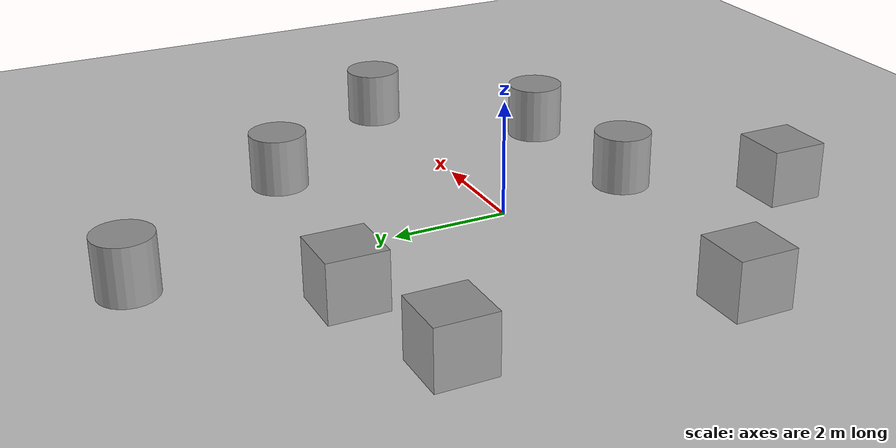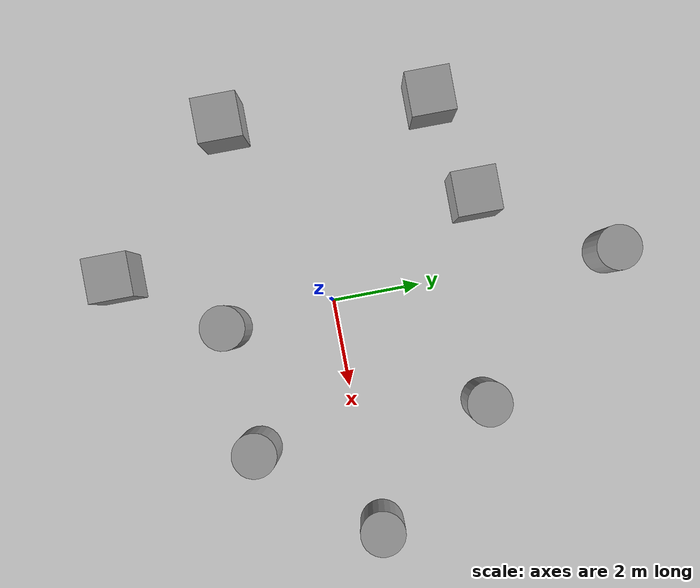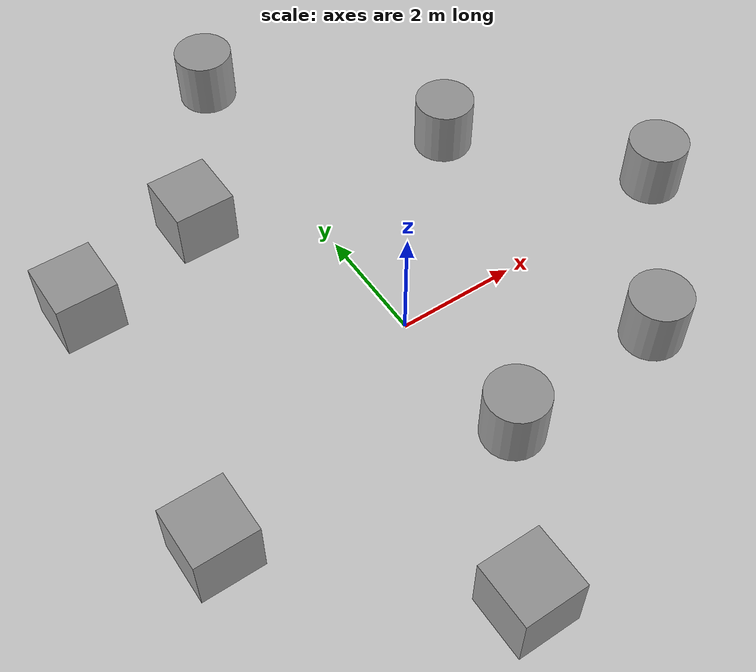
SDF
<sdf version="1.7">
 <world name="default">
  <light name="sun" type="directional">
   <pose>0 0 10 0 -0 0</pose>
   <diffuse>0.8 0.8 0.8 1</diffuse>
   <specular>0.2 0.2 0.2 1</specular>
   <attenuation>
    <range>1000</range>
    <constant>0.9</constant>
    <linear>0.01</linear>
    <quadratic>0.001</quadratic>
   </attenuation>
   <direction>-0.5 0.1 -0.9</direction>
   <spot><inner_angle>0</inner_angle><outer_angle>0</outer_angle><falloff>0</falloff></spot>
  </light>
  <model name="ground_plane">
   <static>1</static>
   <link name="link">
    <collision name="collision">
     <geometry><plane><normal>0 0 1</normal><size>100 100</size></plane></geometry>
     <surface>
      <contact><collide_bitmask>65535</collide_bitmask></contact>
      <friction><ode><mu>100</mu><mu2>50</mu2></ode></friction>
     </surface>
    </collision>
    <visual name="visual">
     <cast_shadows>0</cast_shadows>
     <geometry><plane><normal>0 0 1</normal><size>100 100</size></plane></geometry>
     <material>
      <script><uri>file://media/materials/scripts/gazebo.material</uri><name>Gazebo/Grey</name></script>
     </material>
    </visual>
   </link>
  </model>
  <gravity>0 0 -9.8</gravity>
  <magnetic_field>6e-06 2.3e-05 -4.2e-05</magnetic_field>
  <atmosphere type="adiabatic"/>
  <physics type="ode">
   <max_step_size>0.001</max_step_size>
   <real_time_factor>1</real_time_factor>
   <real_time_update_rate>1000</real_time_update_rate>
  </physics>
  <scene><ambient>0.4 0.4 0.4 1</ambient><background>0.7 0.7 0.7 1</background><shadows>1</shadows></scene>
  <audio><device>default</device></audio>
  <spherical_coordinates>
   <surface_model>EARTH_WGS84</surface_model>
   <latitude_deg>0</latitude_deg>
   <longitude_deg>0</longitude_deg>
   <elevation>0</elevation>
   <heading_deg>0</heading_deg>
  </spherical_coordinates>
  <model name="unit_box">
   <pose>-4.33859 -1.73626 0.499995 0 1e-05 0</pose>
   <link name="link">
    <inertial>
     <mass>1</mass>
     <inertia>
      <ixx>0.166667</ixx>
      <ixy>0</ixy>
      <ixz>0</ixz>
      <iyy>0.166667</iyy>
      <iyz>0</iyz>
      <izz>0.166667</izz>
     </inertia>
    </inertial>
    <collision name="collision"><geometry><box><size>1 1 1</size></box></geometry></collision>
    <visual name="visual">
     <geometry><box><size>1 1 1</size></box></geometry>
     <material>
      <script><name>Gazebo/Grey</name><uri>file://media/materials/scripts/gazebo.material</uri></script>
     </material>
    </visual>
   </link>
  </model>
  <model name="unit_box_0">
   <pose>-4.05103 2.94284 0.499995 -1e-05 -0 -0</pose>
   <link name="link">
    <inertial>
     <mass>1</mass>
     <inertia>
      <ixx>0.166667</ixx>
      <ixy>0</ixy>
      <ixz>0</ixz>
      <iyy>0.166667</iyy>
      <iyz>0</iyz>
      <izz>0.166667</izz>
     </inertia>
    </inertial>
    <collision name="collision"><geometry><box><size>1 1 1</size></box></geometry></collision>
    <visual name="visual">
     <geometry><box><size>1 1 1</size></box></geometry>
     <material>
      <script><name>Gazebo/Grey</name><uri>file://media/materials/scripts/gazebo.material</uri></script>
     </material>
    </visual>
   </link>
  </model>
  <model name="unit_cylinder">
   <pose>2.86476 2.96001 0.499992 -3e-06 4e-06 0</pose>
   <link name="link">
    <inertial>
     <mass>1</mass>
     <inertia><ixx>0.145833</ixx><ixy>0</ixy><ixz>0</ixz><iyy>0.145833</iyy><iyz>0</iyz><izz>0.125</izz></inertia>
    </inertial>
    <collision name="collision">
     <geometry><cylinder><radius>0.5</radius><length>1</length></cylinder></geometry>
    </collision>
    <visual name="visual">
     <geometry><cylinder><radius>0.5</radius><length>1</length></cylinder></geometry>
     <material>
      <script><name>Gazebo/Grey</name><uri>file://media/materials/scripts/gazebo.material</uri></script>
     </material>
    </visual>
   </link>
  </model>
  <model name="unit_cylinder_0">
   <pose>3.03513 -2.26808 0.499998 3e-06 -4e-06 0</pose>
   <link name="link">
    <inertial>
     <mass>1</mass>
     <inertia><ixx>0.145833</ixx><ixy>0</ixy><ixz>0</ixz><iyy>0.145833</iyy><iyz>0</iyz><izz>0.125</izz></inertia>
    </inertial>
    <collision name="collision">
     <geometry><cylinder><radius>0.5</radius><length>1</length></cylinder></geometry>
    </collision>
    <visual name="visual">
     <geometry><cylinder><radius>0.5</radius><length>1</length></cylinder></geometry>
     <material>
      <script><name>Gazebo/Grey</name><uri>file://media/materials/scripts/gazebo.material</uri></script>
     </material>
    </visual>
   </link>
  </model>
  <model name="unit_box_1">
   <pose>-1.34922 -4.69606 0.499995 0 1e-05 0</pose>
   <link name="link">
    <inertial>
     <mass>1</mass>
     <inertia>
      <ixx>0.166667</ixx>
      <ixy>0</ixy>
      <ixz>0</ixz>
      <iyy>0.166667</iyy>
      <iyz>0</iyz>
      <izz>0.166667</izz>
     </inertia>
    </inertial>
    <collision name="collision"><geometry><box><size>1 1 1</size></box></geometry></collision>
    <visual name="visual">
     <geometry><box><size>1 1 1</size></box></geometry>
     <material>
      <script><name>Gazebo/Grey</name><uri>file://media/materials/scripts/gazebo.material</uri></script>
     </material>
    </visual>
   </link>
  </model>
  <model name="unit_cylinder_1">
   <pose>0.191481 -2.44521 0.499993 -3e-06 -3e-06 0</pose>
   <link name="link">
    <inertial>
     <mass>1</mass>
     <inertia><ixx>0.145833</ixx><ixy>0</ixy><ixz>0</ixz><iyy>0.145833</iyy><iyz>0</iyz><izz>0.125</izz></inertia>
    </inertial>
    <collision name="collision">
     <geometry><cylinder><radius>0.5</radius><length>1</length></cylinder></geometry>
    </collision>
    <visual name="visual">
     <geometry><cylinder><radius>0.5</radius><length>1</length></cylinder></geometry>
     <material>
      <script><name>Gazebo/Grey</name><uri>file://media/materials/scripts/gazebo.material</uri></script>
     </material>
    </visual>
   </link>
  </model>
  <model name="unit_cylinder_2">
   <pose>5.20423 0.16881 0.499997 3e-06 4e-06 -0</pose>
   <link name="link">
    <inertial>
     <mass>1</mass>
     <inertia><ixx>0.145833</ixx><ixy>0</ixy><ixz>0</ixz><iyy>0.145833</iyy><iyz>0</iyz><izz>0.125</izz></inertia>
    </inertial>
    <collision name="collision">
     <geometry><cylinder><radius>0.5</radius><length>1</length></cylinder></geometry>
    </collision>
    <visual name="visual">
     <geometry><cylinder><radius>0.5</radius><length>1</length></cylinder></geometry>
     <material>
      <script><name>Gazebo/Grey</name><uri>file://media/materials/scripts/gazebo.material</uri></script>
     </material>
    </visual>
   </link>
  </model>
  <model name="unit_box_2">
   <pose>-1.73229 3.53051 0.499995 -1e-05 -0 0</pose>
   <link name="link">
    <inertial>
     <mass>1</mass>
     <inertia>
      <ixx>0.166667</ixx>
      <ixy>0</ixy>
      <ixz>0</ixz>
      <iyy>0.166667</iyy>
      <iyz>0</iyz>
      <izz>0.166667</izz>
     </inertia>
    </inertial>
    <collision name="collision"><geometry><box><size>1 1 1</size></box></geometry></collision>
    <visual name="visual">
     <geometry><box><size>1 1 1</size></box></geometry>
     <material>
      <script><name>Gazebo/Grey</name><uri>file://media/materials/scripts/gazebo.material</uri></script>
     </material>
    </visual>
   </link>
  </model>
  <model name="unit_cylinder_3">
   <pose>0.046111 6.34081 0.499997 3e-06 4e-06 -0</pose>
   <link name="link">
    <inertial>
     <mass>1</mass>
     <inertia><ixx>0.145833</ixx><ixy>0</ixy><ixz>0</ixz><iyy>0.145833</iyy><iyz>0</iyz><izz>0.125</izz></inertia>
    </inertial>
    <collision name="collision">
     <geometry><cylinder><radius>0.5</radius><length>1</length></cylinder></geometry>
    </collision>
    <visual name="visual">
     <geometry><cylinder><radius>0.5</radius><length>1</length></cylinder></geometry>
     <material>
      <script><name>Gazebo/Grey</name><uri>file://media/materials/scripts/gazebo.material</uri></script>
     </material>
    </visual>
   </link>
  </model>
 </world>
</sdf>
